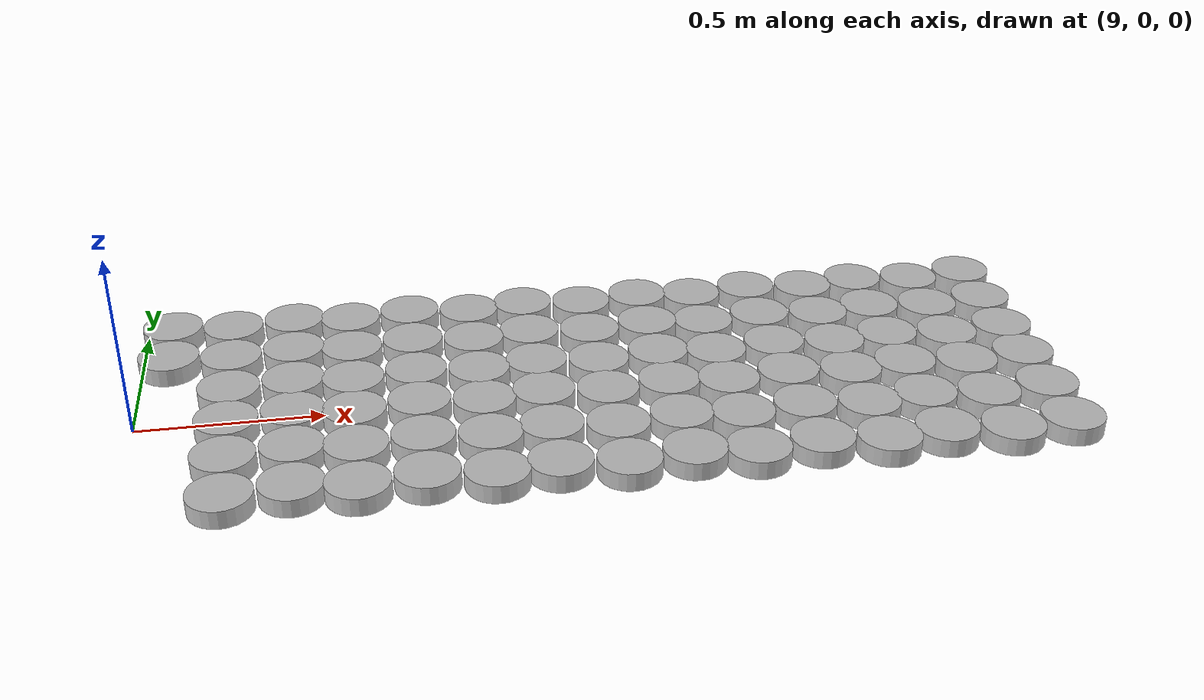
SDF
<sdf version="1.6">
 <world name="default">
  <model name="SnowPuck-45-4-0">
   <pose>9.08 0.26 0.05  0 0 0</pose>
   <link name="link">
    <inertial>
     <mass>0.01</mass>
     <inertia><ixx>0.145833</ixx><ixy>0</ixy><ixz>0</ixz><iyy>0.145833</iyy><iyz>0</iyz><izz>0.125</izz></inertia>
    </inertial>
    <collision name="collision">
     <geometry><cylinder><radius>.05</radius><length>0.04</length></cylinder></geometry>
    </collision>
    <visual name="visual">
     <geometry><cylinder><radius>.083333</radius><length>0.05</length></cylinder></geometry>
    </visual>
   </link>
  </model>
  <model name="SnowPuck-45-5-0">
   <pose>9.08 0.43 0.05  0 0 0</pose>
   <link name="link">
    <inertial>
     <mass>0.01</mass>
     <inertia><ixx>0.145833</ixx><ixy>0</ixy><ixz>0</ixz><iyy>0.145833</iyy><iyz>0</iyz><izz>0.125</izz></inertia>
    </inertial>
    <collision name="collision">
     <geometry><cylinder><radius>.05</radius><length>0.04</length></cylinder></geometry>
    </collision>
    <visual name="visual">
     <geometry><cylinder><radius>.083333</radius><length>0.05</length></cylinder></geometry>
    </visual>
   </link>
  </model>
  <model name="SnowPuck-46-0-0">
   <pose>9.25 -0.43 0.05  0 0 0</pose>
   <link name="link">
    <inertial>
     <mass>0.01</mass>
     <inertia><ixx>0.145833</ixx><ixy>0</ixy><ixz>0</ixz><iyy>0.145833</iyy><iyz>0</iyz><izz>0.125</izz></inertia>
    </inertial>
    <collision name="collision">
     <geometry><cylinder><radius>.05</radius><length>0.04</length></cylinder></geometry>
    </collision>
    <visual name="visual">
     <geometry><cylinder><radius>.083333</radius><length>0.05</length></cylinder></geometry>
    </visual>
   </link>
  </model>
  <model name="SnowPuck-46-1-0">
   <pose>9.25 -0.26 0.05  0 0 0</pose>
   <link name="link">
    <inertial>
     <mass>0.01</mass>
     <inertia><ixx>0.145833</ixx><ixy>0</ixy><ixz>0</ixz><iyy>0.145833</iyy><iyz>0</iyz><izz>0.125</izz></inertia>
    </inertial>
    <collision name="collision">
     <geometry><cylinder><radius>.05</radius><length>0.04</length></cylinder></geometry>
    </collision>
    <visual name="visual">
     <geometry><cylinder><radius>.083333</radius><length>0.05</length></cylinder></geometry>
    </visual>
   </link>
  </model>
  <model name="SnowPuck-46-2-0">
   <pose>9.25 -0.09 0.05  0 0 0</pose>
   <link name="link">
    <inertial>
     <mass>0.01</mass>
     <inertia><ixx>0.145833</ixx><ixy>0</ixy><ixz>0</ixz><iyy>0.145833</iyy><iyz>0</iyz><izz>0.125</izz></inertia>
    </inertial>
    <collision name="collision">
     <geometry><cylinder><radius>.05</radius><length>0.04</length></cylinder></geometry>
    </collision>
    <visual name="visual">
     <geometry><cylinder><radius>.083333</radius><length>0.05</length></cylinder></geometry>
    </visual>
   </link>
  </model>
  <model name="SnowPuck-46-3-0">
   <pose>9.25 0.07 0.05  0 0 0</pose>
   <link name="link">
    <inertial>
     <mass>0.01</mass>
     <inertia><ixx>0.145833</ixx><ixy>0</ixy><ixz>0</ixz><iyy>0.145833</iyy><iyz>0</iyz><izz>0.125</izz></inertia>
    </inertial>
    <collision name="collision">
     <geometry><cylinder><radius>.05</radius><length>0.04</length></cylinder></geometry>
    </collision>
    <visual name="visual">
     <geometry><cylinder><radius>.083333</radius><length>0.05</length></cylinder></geometry>
    </visual>
   </link>
  </model>
  <model name="SnowPuck-46-4-0">
   <pose>9.25 0.24 0.05  0 0 0</pose>
   <link name="link">
    <inertial>
     <mass>0.01</mass>
     <inertia><ixx>0.145833</ixx><ixy>0</ixy><ixz>0</ixz><iyy>0.145833</iyy><iyz>0</iyz><izz>0.125</izz></inertia>
    </inertial>
    <collision name="collision">
     <geometry><cylinder><radius>.05</radius><length>0.04</length></cylinder></geometry>
    </collision>
    <visual name="visual">
     <geometry><cylinder><radius>.083333</radius><length>0.05</length></cylinder></geometry>
    </visual>
   </link>
  </model>
  <model name="SnowPuck-46-5-0">
   <pose>9.25 0.41 0.05  0 0 0</pose>
   <link name="link">
    <inertial>
     <mass>0.01</mass>
     <inertia><ixx>0.145833</ixx><ixy>0</ixy><ixz>0</ixz><iyy>0.145833</iyy><iyz>0</iyz><izz>0.125</izz></inertia>
    </inertial>
    <collision name="collision">
     <geometry><cylinder><radius>.05</radius><length>0.04</length></cylinder></geometry>
    </collision>
    <visual name="visual">
     <geometry><cylinder><radius>.083333</radius><length>0.05</length></cylinder></geometry>
    </visual>
   </link>
  </model>
  <model name="SnowPuck-47-0-0">
   <pose>9.42 -0.41 0.05  0 0 0</pose>
   <link name="link">
    <inertial>
     <mass>0.01</mass>
     <inertia><ixx>0.145833</ixx><ixy>0</ixy><ixz>0</ixz><iyy>0.145833</iyy><iyz>0</iyz><izz>0.125</izz></inertia>
    </inertial>
    <collision name="collision">
     <geometry><cylinder><radius>.05</radius><length>0.04</length></cylinder></geometry>
    </collision>
    <visual name="visual">
     <geometry><cylinder><radius>.083333</radius><length>0.05</length></cylinder></geometry>
    </visual>
   </link>
  </model>
  <model name="SnowPuck-47-1-0">
   <pose>9.42 -0.24 0.05  0 0 0</pose>
   <link name="link">
    <inertial>
     <mass>0.01</mass>
     <inertia><ixx>0.145833</ixx><ixy>0</ixy><ixz>0</ixz><iyy>0.145833</iyy><iyz>0</iyz><izz>0.125</izz></inertia>
    </inertial>
    <collision name="collision">
     <geometry><cylinder><radius>.05</radius><length>0.04</length></cylinder></geometry>
    </collision>
    <visual name="visual">
     <geometry><cylinder><radius>.083333</radius><length>0.05</length></cylinder></geometry>
    </visual>
   </link>
  </model>
  <model name="SnowPuck-47-2-0">
   <pose>9.42 -0.07 0.05  0 0 0</pose>
   <link name="link">
    <inertial>
     <mass>0.01</mass>
     <inertia><ixx>0.145833</ixx><ixy>0</ixy><ixz>0</ixz><iyy>0.145833</iyy><iyz>0</iyz><izz>0.125</izz></inertia>
    </inertial>
    <collision name="collision">
     <geometry><cylinder><radius>.05</radius><length>0.04</length></cylinder></geometry>
    </collision>
    <visual name="visual">
     <geometry><cylinder><radius>.083333</radius><length>0.05</length></cylinder></geometry>
    </visual>
   </link>
  </model>
  <model name="SnowPuck-47-3-0">
   <pose>9.42 0.09 0.05  0 0 0</pose>
   <link name="link">
    <inertial>
     <mass>0.01</mass>
     <inertia><ixx>0.145833</ixx><ixy>0</ixy><ixz>0</ixz><iyy>0.145833</iyy><iyz>0</iyz><izz>0.125</izz></inertia>
    </inertial>
    <collision name="collision">
     <geometry><cylinder><radius>.05</radius><length>0.04</length></cylinder></geometry>
    </collision>
    <visual name="visual">
     <geometry><cylinder><radius>.083333</radius><length>0.05</length></cylinder></geometry>
    </visual>
   </link>
  </model>
  <model name="SnowPuck-47-4-0">
   <pose>9.42 0.26 0.05  0 0 0</pose>
   <link name="link">
    <inertial>
     <mass>0.01</mass>
     <inertia><ixx>0.145833</ixx><ixy>0</ixy><ixz>0</ixz><iyy>0.145833</iyy><iyz>0</iyz><izz>0.125</izz></inertia>
    </inertial>
    <collision name="collision">
     <geometry><cylinder><radius>.05</radius><length>0.04</length></cylinder></geometry>
    </collision>
    <visual name="visual">
     <geometry><cylinder><radius>.083333</radius><length>0.05</length></cylinder></geometry>
    </visual>
   </link>
  </model>
  <model name="SnowPuck-47-5-0">
   <pose>9.42 0.43 0.05  0 0 0</pose>
   <link name="link">
    <inertial>
     <mass>0.01</mass>
     <inertia><ixx>0.145833</ixx><ixy>0</ixy><ixz>0</ixz><iyy>0.145833</iyy><iyz>0</iyz><izz>0.125</izz></inertia>
    </inertial>
    <collision name="collision">
     <geometry><cylinder><radius>.05</radius><length>0.04</length></cylinder></geometry>
    </collision>
    <visual name="visual">
     <geometry><cylinder><radius>.083333</radius><length>0.05</length></cylinder></geometry>
    </visual>
   </link>
  </model>
  <model name="SnowPuck-48-0-0">
   <pose>9.58 -0.43 0.05  0 0 0</pose>
   <link name="link">
    <inertial>
     <mass>0.01</mass>
     <inertia><ixx>0.145833</ixx><ixy>0</ixy><ixz>0</ixz><iyy>0.145833</iyy><iyz>0</iyz><izz>0.125</izz></inertia>
    </inertial>
    <collision name="collision">
     <geometry><cylinder><radius>.05</radius><length>0.04</length></cylinder></geometry>
    </collision>
    <visual name="visual">
     <geometry><cylinder><radius>.083333</radius><length>0.05</length></cylinder></geometry>
    </visual>
   </link>
  </model>
  <model name="SnowPuck-48-1-0">
   <pose>9.58 -0.26 0.05  0 0 0</pose>
   <link name="link">
    <inertial>
     <mass>0.01</mass>
     <inertia><ixx>0.145833</ixx><ixy>0</ixy><ixz>0</ixz><iyy>0.145833</iyy><iyz>0</iyz><izz>0.125</izz></inertia>
    </inertial>
    <collision name="collision">
     <geometry><cylinder><radius>.05</radius><length>0.04</length></cylinder></geometry>
    </collision>
    <visual name="visual">
     <geometry><cylinder><radius>.083333</radius><length>0.05</length></cylinder></geometry>
    </visual>
   </link>
  </model>
  <model name="SnowPuck-48-2-0">
   <pose>9.58 -0.09 0.05  0 0 0</pose>
   <link name="link">
    <inertial>
     <mass>0.01</mass>
     <inertia><ixx>0.145833</ixx><ixy>0</ixy><ixz>0</ixz><iyy>0.145833</iyy><iyz>0</iyz><izz>0.125</izz></inertia>
    </inertial>
    <collision name="collision">
     <geometry><cylinder><radius>.05</radius><length>0.04</length></cylinder></geometry>
    </collision>
    <visual name="visual">
     <geometry><cylinder><radius>.083333</radius><length>0.05</length></cylinder></geometry>
    </visual>
   </link>
  </model>
  <model name="SnowPuck-48-3-0">
   <pose>9.58 0.07 0.05  0 0 0</pose>
   <link name="link">
    <inertial>
     <mass>0.01</mass>
     <inertia><ixx>0.145833</ixx><ixy>0</ixy><ixz>0</ixz><iyy>0.145833</iyy><iyz>0</iyz><izz>0.125</izz></inertia>
    </inertial>
    <collision name="collision">
     <geometry><cylinder><radius>.05</radius><length>0.04</length></cylinder></geometry>
    </collision>
    <visual name="visual">
     <geometry><cylinder><radius>.083333</radius><length>0.05</length></cylinder></geometry>
    </visual>
   </link>
  </model>
  <model name="SnowPuck-48-4-0">
   <pose>9.58 0.24 0.05  0 0 0</pose>
   <link name="link">
    <inertial>
     <mass>0.01</mass>
     <inertia><ixx>0.145833</ixx><ixy>0</ixy><ixz>0</ixz><iyy>0.145833</iyy><iyz>0</iyz><izz>0.125</izz></inertia>
    </inertial>
    <collision name="collision">
     <geometry><cylinder><radius>.05</radius><length>0.04</length></cylinder></geometry>
    </collision>
    <visual name="visual">
     <geometry><cylinder><radius>.083333</radius><length>0.05</length></cylinder></geometry>
    </visual>
   </link>
  </model>
  <model name="SnowPuck-48-5-0">
   <pose>9.58 0.41 0.05  0 0 0</pose>
   <link name="link">
    <inertial>
     <mass>0.01</mass>
     <inertia><ixx>0.145833</ixx><ixy>0</ixy><ixz>0</ixz><iyy>0.145833</iyy><iyz>0</iyz><izz>0.125</izz></inertia>
    </inertial>
    <collision name="collision">
     <geometry><cylinder><radius>.05</radius><length>0.04</length></cylinder></geometry>
    </collision>
    <visual name="visual">
     <geometry><cylinder><radius>.083333</radius><length>0.05</length></cylinder></geometry>
    </visual>
   </link>
  </model>
  <model name="SnowPuck-49-0-0">
   <pose>9.75 -0.41 0.05  0 0 0</pose>
   <link name="link">
    <inertial>
     <mass>0.01</mass>
     <inertia><ixx>0.145833</ixx><ixy>0</ixy><ixz>0</ixz><iyy>0.145833</iyy><iyz>0</iyz><izz>0.125</izz></inertia>
    </inertial>
    <collision name="collision">
     <geometry><cylinder><radius>.05</radius><length>0.04</length></cylinder></geometry>
    </collision>
    <visual name="visual">
     <geometry><cylinder><radius>.083333</radius><length>0.05</length></cylinder></geometry>
    </visual>
   </link>
  </model>
  <model name="SnowPuck-49-1-0">
   <pose>9.75 -0.24 0.05  0 0 0</pose>
   <link name="link">
    <inertial>
     <mass>0.01</mass>
     <inertia><ixx>0.145833</ixx><ixy>0</ixy><ixz>0</ixz><iyy>0.145833</iyy><iyz>0</iyz><izz>0.125</izz></inertia>
    </inertial>
    <collision name="collision">
     <geometry><cylinder><radius>.05</radius><length>0.04</length></cylinder></geometry>
    </collision>
    <visual name="visual">
     <geometry><cylinder><radius>.083333</radius><length>0.05</length></cylinder></geometry>
    </visual>
   </link>
  </model>
  <model name="SnowPuck-49-2-0">
   <pose>9.75 -0.07 0.05  0 0 0</pose>
   <link name="link">
    <inertial>
     <mass>0.01</mass>
     <inertia><ixx>0.145833</ixx><ixy>0</ixy><ixz>0</ixz><iyy>0.145833</iyy><iyz>0</iyz><izz>0.125</izz></inertia>
    </inertial>
    <collision name="collision">
     <geometry><cylinder><radius>.05</radius><length>0.04</length></cylinder></geometry>
    </collision>
    <visual name="visual">
     <geometry><cylinder><radius>.083333</radius><length>0.05</length></cylinder></geometry>
    </visual>
   </link>
  </model>
  <model name="SnowPuck-49-3-0">
   <pose>9.75 0.09 0.05  0 0 0</pose>
   <link name="link">
    <inertial>
     <mass>0.01</mass>
     <inertia><ixx>0.145833</ixx><ixy>0</ixy><ixz>0</ixz><iyy>0.145833</iyy><iyz>0</iyz><izz>0.125</izz></inertia>
    </inertial>
    <collision name="collision">
     <geometry><cylinder><radius>.05</radius><length>0.04</length></cylinder></geometry>
    </collision>
    <visual name="visual">
     <geometry><cylinder><radius>.083333</radius><length>0.05</length></cylinder></geometry>
    </visual>
   </link>
  </model>
  <model name="SnowPuck-49-4-0">
   <pose>9.75 0.26 0.05  0 0 0</pose>
   <link name="link">
    <inertial>
     <mass>0.01</mass>
     <inertia><ixx>0.145833</ixx><ixy>0</ixy><ixz>0</ixz><iyy>0.145833</iyy><iyz>0</iyz><izz>0.125</izz></inertia>
    </inertial>
    <collision name="collision">
     <geometry><cylinder><radius>.05</radius><length>0.04</length></cylinder></geometry>
    </collision>
    <visual name="visual">
     <geometry><cylinder><radius>.083333</radius><length>0.05</length></cylinder></geometry>
    </visual>
   </link>
  </model>
  <model name="SnowPuck-49-5-0">
   <pose>9.75 0.43 0.05  0 0 0</pose>
   <link name="link">
    <inertial>
     <mass>0.01</mass>
     <inertia><ixx>0.145833</ixx><ixy>0</ixy><ixz>0</ixz><iyy>0.145833</iyy><iyz>0</iyz><izz>0.125</izz></inertia>
    </inertial>
    <collision name="collision">
     <geometry><cylinder><radius>.05</radius><length>0.04</length></cylinder></geometry>
    </collision>
    <visual name="visual">
     <geometry><cylinder><radius>.083333</radius><length>0.05</length></cylinder></geometry>
    </visual>
   </link>
  </model>
  <model name="SnowPuck-50-0-0">
   <pose>9.92 -0.43 0.05  0 0 0</pose>
   <link name="link">
    <inertial>
     <mass>0.01</mass>
     <inertia><ixx>0.145833</ixx><ixy>0</ixy><ixz>0</ixz><iyy>0.145833</iyy><iyz>0</iyz><izz>0.125</izz></inertia>
    </inertial>
    <collision name="collision">
     <geometry><cylinder><radius>.05</radius><length>0.04</length></cylinder></geometry>
    </collision>
    <visual name="visual">
     <geometry><cylinder><radius>.083333</radius><length>0.05</length></cylinder></geometry>
    </visual>
   </link>
  </model>
  <model name="SnowPuck-50-1-0">
   <pose>9.92 -0.26 0.05  0 0 0</pose>
   <link name="link">
    <inertial>
     <mass>0.01</mass>
     <inertia><ixx>0.145833</ixx><ixy>0</ixy><ixz>0</ixz><iyy>0.145833</iyy><iyz>0</iyz><izz>0.125</izz></inertia>
    </inertial>
    <collision name="collision">
     <geometry><cylinder><radius>.05</radius><length>0.04</length></cylinder></geometry>
    </collision>
    <visual name="visual">
     <geometry><cylinder><radius>.083333</radius><length>0.05</length></cylinder></geometry>
    </visual>
   </link>
  </model>
  <model name="SnowPuck-50-2-0">
   <pose>9.92 -0.09 0.05  0 0 0</pose>
   <link name="link">
    <inertial>
     <mass>0.01</mass>
     <inertia><ixx>0.145833</ixx><ixy>0</ixy><ixz>0</ixz><iyy>0.145833</iyy><iyz>0</iyz><izz>0.125</izz></inertia>
    </inertial>
    <collision name="collision">
     <geometry><cylinder><radius>.05</radius><length>0.04</length></cylinder></geometry>
    </collision>
    <visual name="visual">
     <geometry><cylinder><radius>.083333</radius><length>0.05</length></cylinder></geometry>
    </visual>
   </link>
  </model>
  <model name="SnowPuck-50-3-0">
   <pose>9.92 0.07 0.05  0 0 0</pose>
   <link name="link">
    <inertial>
     <mass>0.01</mass>
     <inertia><ixx>0.145833</ixx><ixy>0</ixy><ixz>0</ixz><iyy>0.145833</iyy><iyz>0</iyz><izz>0.125</izz></inertia>
    </inertial>
    <collision name="collision">
     <geometry><cylinder><radius>.05</radius><length>0.04</length></cylinder></geometry>
    </collision>
    <visual name="visual">
     <geometry><cylinder><radius>.083333</radius><length>0.05</length></cylinder></geometry>
    </visual>
   </link>
  </model>
  <model name="SnowPuck-50-4-0">
   <pose>9.92 0.24 0.05  0 0 0</pose>
   <link name="link">
    <inertial>
     <mass>0.01</mass>
     <inertia><ixx>0.145833</ixx><ixy>0</ixy><ixz>0</ixz><iyy>0.145833</iyy><iyz>0</iyz><izz>0.125</izz></inertia>
    </inertial>
    <collision name="collision">
     <geometry><cylinder><radius>.05</radius><length>0.04</length></cylinder></geometry>
    </collision>
    <visual name="visual">
     <geometry><cylinder><radius>.083333</radius><length>0.05</length></cylinder></geometry>
    </visual>
   </link>
  </model>
  <model name="SnowPuck-50-5-0">
   <pose>9.92 0.41 0.05  0 0 0</pose>
   <link name="link">
    <inertial>
     <mass>0.01</mass>
     <inertia><ixx>0.145833</ixx><ixy>0</ixy><ixz>0</ixz><iyy>0.145833</iyy><iyz>0</iyz><izz>0.125</izz></inertia>
    </inertial>
    <collision name="collision">
     <geometry><cylinder><radius>.05</radius><length>0.04</length></cylinder></geometry>
    </collision>
    <visual name="visual">
     <geometry><cylinder><radius>.083333</radius><length>0.05</length></cylinder></geometry>
    </visual>
   </link>
  </model>
  <model name="SnowPuck-51-0-0">
   <pose>10.08 -0.41 0.05  0 0 0</pose>
   <link name="link">
    <inertial>
     <mass>0.01</mass>
     <inertia><ixx>0.145833</ixx><ixy>0</ixy><ixz>0</ixz><iyy>0.145833</iyy><iyz>0</iyz><izz>0.125</izz></inertia>
    </inertial>
    <collision name="collision">
     <geometry><cylinder><radius>.05</radius><length>0.04</length></cylinder></geometry>
    </collision>
    <visual name="visual">
     <geometry><cylinder><radius>.083333</radius><length>0.05</length></cylinder></geometry>
    </visual>
   </link>
  </model>
  <model name="SnowPuck-51-1-0">
   <pose>10.08 -0.24 0.05  0 0 0</pose>
   <link name="link">
    <inertial>
     <mass>0.01</mass>
     <inertia><ixx>0.145833</ixx><ixy>0</ixy><ixz>0</ixz><iyy>0.145833</iyy><iyz>0</iyz><izz>0.125</izz></inertia>
    </inertial>
    <collision name="collision">
     <geometry><cylinder><radius>.05</radius><length>0.04</length></cylinder></geometry>
    </collision>
    <visual name="visual">
     <geometry><cylinder><radius>.083333</radius><length>0.05</length></cylinder></geometry>
    </visual>
   </link>
  </model>
  <model name="SnowPuck-51-2-0">
   <pose>10.08 -0.07 0.05  0 0 0</pose>
   <link name="link">
    <inertial>
     <mass>0.01</mass>
     <inertia><ixx>0.145833</ixx><ixy>0</ixy><ixz>0</ixz><iyy>0.145833</iyy><iyz>0</iyz><izz>0.125</izz></inertia>
    </inertial>
    <collision name="collision">
     <geometry><cylinder><radius>.05</radius><length>0.04</length></cylinder></geometry>
    </collision>
    <visual name="visual">
     <geometry><cylinder><radius>.083333</radius><length>0.05</length></cylinder></geometry>
    </visual>
   </link>
  </model>
  <model name="SnowPuck-51-3-0">
   <pose>10.08 0.09 0.05  0 0 0</pose>
   <link name="link">
    <inertial>
     <mass>0.01</mass>
     <inertia><ixx>0.145833</ixx><ixy>0</ixy><ixz>0</ixz><iyy>0.145833</iyy><iyz>0</iyz><izz>0.125</izz></inertia>
    </inertial>
    <collision name="collision">
     <geometry><cylinder><radius>.05</radius><length>0.04</length></cylinder></geometry>
    </collision>
    <visual name="visual">
     <geometry><cylinder><radius>.083333</radius><length>0.05</length></cylinder></geometry>
    </visual>
   </link>
  </model>
  <model name="SnowPuck-51-4-0">
   <pose>10.08 0.26 0.05  0 0 0</pose>
   <link name="link">
    <inertial>
     <mass>0.01</mass>
     <inertia><ixx>0.145833</ixx><ixy>0</ixy><ixz>0</ixz><iyy>0.145833</iyy><iyz>0</iyz><izz>0.125</izz></inertia>
    </inertial>
    <collision name="collision">
     <geometry><cylinder><radius>.05</radius><length>0.04</length></cylinder></geometry>
    </collision>
    <visual name="visual">
     <geometry><cylinder><radius>.083333</radius><length>0.05</length></cylinder></geometry>
    </visual>
   </link>
  </model>
  <model name="SnowPuck-51-5-0">
   <pose>10.08 0.43 0.05  0 0 0</pose>
   <link name="link">
    <inertial>
     <mass>0.01</mass>
     <inertia><ixx>0.145833</ixx><ixy>0</ixy><ixz>0</ixz><iyy>0.145833</iyy><iyz>0</iyz><izz>0.125</izz></inertia>
    </inertial>
    <collision name="collision">
     <geometry><cylinder><radius>.05</radius><length>0.04</length></cylinder></geometry>
    </collision>
    <visual name="visual">
     <geometry><cylinder><radius>.083333</radius><length>0.05</length></cylinder></geometry>
    </visual>
   </link>
  </model>
  <model name="SnowPuck-52-0-0">
   <pose>10.25 -0.43 0.05  0 0 0</pose>
   <link name="link">
    <inertial>
     <mass>0.01</mass>
     <inertia><ixx>0.145833</ixx><ixy>0</ixy><ixz>0</ixz><iyy>0.145833</iyy><iyz>0</iyz><izz>0.125</izz></inertia>
    </inertial>
    <collision name="collision">
     <geometry><cylinder><radius>.05</radius><length>0.04</length></cylinder></geometry>
    </collision>
    <visual name="visual">
     <geometry><cylinder><radius>.083333</radius><length>0.05</length></cylinder></geometry>
    </visual>
   </link>
  </model>
  <model name="SnowPuck-52-1-0">
   <pose>10.25 -0.26 0.05  0 0 0</pose>
   <link name="link">
    <inertial>
     <mass>0.01</mass>
     <inertia><ixx>0.145833</ixx><ixy>0</ixy><ixz>0</ixz><iyy>0.145833</iyy><iyz>0</iyz><izz>0.125</izz></inertia>
    </inertial>
    <collision name="collision">
     <geometry><cylinder><radius>.05</radius><length>0.04</length></cylinder></geometry>
    </collision>
    <visual name="visual">
     <geometry><cylinder><radius>.083333</radius><length>0.05</length></cylinder></geometry>
    </visual>
   </link>
  </model>
  <model name="SnowPuck-52-2-0">
   <pose>10.25 -0.09 0.05  0 0 0</pose>
   <link name="link">
    <inertial>
     <mass>0.01</mass>
     <inertia><ixx>0.145833</ixx><ixy>0</ixy><ixz>0</ixz><iyy>0.145833</iyy><iyz>0</iyz><izz>0.125</izz></inertia>
    </inertial>
    <collision name="collision">
     <geometry><cylinder><radius>.05</radius><length>0.04</length></cylinder></geometry>
    </collision>
    <visual name="visual">
     <geometry><cylinder><radius>.083333</radius><length>0.05</length></cylinder></geometry>
    </visual>
   </link>
  </model>
  <model name="SnowPuck-52-3-0">
   <pose>10.25 0.07 0.05  0 0 0</pose>
   <link name="link">
    <inertial>
     <mass>0.01</mass>
     <inertia><ixx>0.145833</ixx><ixy>0</ixy><ixz>0</ixz><iyy>0.145833</iyy><iyz>0</iyz><izz>0.125</izz></inertia>
    </inertial>
    <collision name="collision">
     <geometry><cylinder><radius>.05</radius><length>0.04</length></cylinder></geometry>
    </collision>
    <visual name="visual">
     <geometry><cylinder><radius>.083333</radius><length>0.05</length></cylinder></geometry>
    </visual>
   </link>
  </model>
  <model name="SnowPuck-52-4-0">
   <pose>10.25 0.24 0.05  0 0 0</pose>
   <link name="link">
    <inertial>
     <mass>0.01</mass>
     <inertia><ixx>0.145833</ixx><ixy>0</ixy><ixz>0</ixz><iyy>0.145833</iyy><iyz>0</iyz><izz>0.125</izz></inertia>
    </inertial>
    <collision name="collision">
     <geometry><cylinder><radius>.05</radius><length>0.04</length></cylinder></geometry>
    </collision>
    <visual name="visual">
     <geometry><cylinder><radius>.083333</radius><length>0.05</length></cylinder></geometry>
    </visual>
   </link>
  </model>
  <model name="SnowPuck-52-5-0">
   <pose>10.25 0.41 0.05  0 0 0</pose>
   <link name="link">
    <inertial>
     <mass>0.01</mass>
     <inertia><ixx>0.145833</ixx><ixy>0</ixy><ixz>0</ixz><iyy>0.145833</iyy><iyz>0</iyz><izz>0.125</izz></inertia>
    </inertial>
    <collision name="collision">
     <geometry><cylinder><radius>.05</radius><length>0.04</length></cylinder></geometry>
    </collision>
    <visual name="visual">
     <geometry><cylinder><radius>.083333</radius><length>0.05</length></cylinder></geometry>
    </visual>
   </link>
  </model>
  <model name="SnowPuck-53-0-0">
   <pose>10.42 -0.41 0.05  0 0 0</pose>
   <link name="link">
    <inertial>
     <mass>0.01</mass>
     <inertia><ixx>0.145833</ixx><ixy>0</ixy><ixz>0</ixz><iyy>0.145833</iyy><iyz>0</iyz><izz>0.125</izz></inertia>
    </inertial>
    <collision name="collision">
     <geometry><cylinder><radius>.05</radius><length>0.04</length></cylinder></geometry>
    </collision>
    <visual name="visual">
     <geometry><cylinder><radius>.083333</radius><length>0.05</length></cylinder></geometry>
    </visual>
   </link>
  </model>
  <model name="SnowPuck-53-1-0">
   <pose>10.42 -0.24 0.05  0 0 0</pose>
   <link name="link">
    <inertial>
     <mass>0.01</mass>
     <inertia><ixx>0.145833</ixx><ixy>0</ixy><ixz>0</ixz><iyy>0.145833</iyy><iyz>0</iyz><izz>0.125</izz></inertia>
    </inertial>
    <collision name="collision">
     <geometry><cylinder><radius>.05</radius><length>0.04</length></cylinder></geometry>
    </collision>
    <visual name="visual">
     <geometry><cylinder><radius>.083333</radius><length>0.05</length></cylinder></geometry>
    </visual>
   </link>
  </model>
  <model name="SnowPuck-53-2-0">
   <pose>10.42 -0.07 0.05  0 0 0</pose>
   <link name="link">
    <inertial>
     <mass>0.01</mass>
     <inertia><ixx>0.145833</ixx><ixy>0</ixy><ixz>0</ixz><iyy>0.145833</iyy><iyz>0</iyz><izz>0.125</izz></inertia>
    </inertial>
    <collision name="collision">
     <geometry><cylinder><radius>.05</radius><length>0.04</length></cylinder></geometry>
    </collision>
    <visual name="visual">
     <geometry><cylinder><radius>.083333</radius><length>0.05</length></cylinder></geometry>
    </visual>
   </link>
  </model>
  <model name="SnowPuck-53-3-0">
   <pose>10.42 0.09 0.05  0 0 0</pose>
   <link name="link">
    <inertial>
     <mass>0.01</mass>
     <inertia><ixx>0.145833</ixx><ixy>0</ixy><ixz>0</ixz><iyy>0.145833</iyy><iyz>0</iyz><izz>0.125</izz></inertia>
    </inertial>
    <collision name="collision">
     <geometry><cylinder><radius>.05</radius><length>0.04</length></cylinder></geometry>
    </collision>
    <visual name="visual">
     <geometry><cylinder><radius>.083333</radius><length>0.05</length></cylinder></geometry>
    </visual>
   </link>
  </model>
  <model name="SnowPuck-53-4-0">
   <pose>10.42 0.26 0.05  0 0 0</pose>
   <link name="link">
    <inertial>
     <mass>0.01</mass>
     <inertia><ixx>0.145833</ixx><ixy>0</ixy><ixz>0</ixz><iyy>0.145833</iyy><iyz>0</iyz><izz>0.125</izz></inertia>
    </inertial>
    <collision name="collision">
     <geometry><cylinder><radius>.05</radius><length>0.04</length></cylinder></geometry>
    </collision>
    <visual name="visual">
     <geometry><cylinder><radius>.083333</radius><length>0.05</length></cylinder></geometry>
    </visual>
   </link>
  </model>
  <model name="SnowPuck-53-5-0">
   <pose>10.42 0.43 0.05  0 0 0</pose>
   <link name="link">
    <inertial>
     <mass>0.01</mass>
     <inertia><ixx>0.145833</ixx><ixy>0</ixy><ixz>0</ixz><iyy>0.145833</iyy><iyz>0</iyz><izz>0.125</izz></inertia>
    </inertial>
    <collision name="collision">
     <geometry><cylinder><radius>.05</radius><length>0.04</length></cylinder></geometry>
    </collision>
    <visual name="visual">
     <geometry><cylinder><radius>.083333</radius><length>0.05</length></cylinder></geometry>
    </visual>
   </link>
  </model>
  <model name="SnowPuck-54-0-0">
   <pose>10.58 -0.43 0.05  0 0 0</pose>
   <link name="link">
    <inertial>
     <mass>0.01</mass>
     <inertia><ixx>0.145833</ixx><ixy>0</ixy><ixz>0</ixz><iyy>0.145833</iyy><iyz>0</iyz><izz>0.125</izz></inertia>
    </inertial>
    <collision name="collision">
     <geometry><cylinder><radius>.05</radius><length>0.04</length></cylinder></geometry>
    </collision>
    <visual name="visual">
     <geometry><cylinder><radius>.083333</radius><length>0.05</length></cylinder></geometry>
    </visual>
   </link>
  </model>
  <model name="SnowPuck-54-1-0">
   <pose>10.58 -0.26 0.05  0 0 0</pose>
   <link name="link">
    <inertial>
     <mass>0.01</mass>
     <inertia><ixx>0.145833</ixx><ixy>0</ixy><ixz>0</ixz><iyy>0.145833</iyy><iyz>0</iyz><izz>0.125</izz></inertia>
    </inertial>
    <collision name="collision">
     <geometry><cylinder><radius>.05</radius><length>0.04</length></cylinder></geometry>
    </collision>
    <visual name="visual">
     <geometry><cylinder><radius>.083333</radius><length>0.05</length></cylinder></geometry>
    </visual>
   </link>
  </model>
  <model name="SnowPuck-54-2-0">
   <pose>10.58 -0.09 0.05  0 0 0</pose>
   <link name="link">
    <inertial>
     <mass>0.01</mass>
     <inertia><ixx>0.145833</ixx><ixy>0</ixy><ixz>0</ixz><iyy>0.145833</iyy><iyz>0</iyz><izz>0.125</izz></inertia>
    </inertial>
    <collision name="collision">
     <geometry><cylinder><radius>.05</radius><length>0.04</length></cylinder></geometry>
    </collision>
    <visual name="visual">
     <geometry><cylinder><radius>.083333</radius><length>0.05</length></cylinder></geometry>
    </visual>
   </link>
  </model>
  <model name="SnowPuck-54-3-0">
   <pose>10.58 0.07 0.05  0 0 0</pose>
   <link name="link">
    <inertial>
     <mass>0.01</mass>
     <inertia><ixx>0.145833</ixx><ixy>0</ixy><ixz>0</ixz><iyy>0.145833</iyy><iyz>0</iyz><izz>0.125</izz></inertia>
    </inertial>
    <collision name="collision">
     <geometry><cylinder><radius>.05</radius><length>0.04</length></cylinder></geometry>
    </collision>
    <visual name="visual">
     <geometry><cylinder><radius>.083333</radius><length>0.05</length></cylinder></geometry>
    </visual>
   </link>
  </model>
  <model name="SnowPuck-54-4-0">
   <pose>10.58 0.24 0.05  0 0 0</pose>
   <link name="link">
    <inertial>
     <mass>0.01</mass>
     <inertia><ixx>0.145833</ixx><ixy>0</ixy><ixz>0</ixz><iyy>0.145833</iyy><iyz>0</iyz><izz>0.125</izz></inertia>
    </inertial>
    <collision name="collision">
     <geometry><cylinder><radius>.05</radius><length>0.04</length></cylinder></geometry>
    </collision>
    <visual name="visual">
     <geometry><cylinder><radius>.083333</radius><length>0.05</length></cylinder></geometry>
    </visual>
   </link>
  </model>
  <model name="SnowPuck-54-5-0">
   <pose>10.58 0.41 0.05  0 0 0</pose>
   <link name="link">
    <inertial>
     <mass>0.01</mass>
     <inertia><ixx>0.145833</ixx><ixy>0</ixy><ixz>0</ixz><iyy>0.145833</iyy><iyz>0</iyz><izz>0.125</izz></inertia>
    </inertial>
    <collision name="collision">
     <geometry><cylinder><radius>.05</radius><length>0.04</length></cylinder></geometry>
    </collision>
    <visual name="visual">
     <geometry><cylinder><radius>.083333</radius><length>0.05</length></cylinder></geometry>
    </visual>
   </link>
  </model>
  <model name="SnowPuck-55-0-0">
   <pose>10.75 -0.41 0.05  0 0 0</pose>
   <link name="link">
    <inertial>
     <mass>0.01</mass>
     <inertia><ixx>0.145833</ixx><ixy>0</ixy><ixz>0</ixz><iyy>0.145833</iyy><iyz>0</iyz><izz>0.125</izz></inertia>
    </inertial>
    <collision name="collision">
     <geometry><cylinder><radius>.05</radius><length>0.04</length></cylinder></geometry>
    </collision>
    <visual name="visual">
     <geometry><cylinder><radius>.083333</radius><length>0.05</length></cylinder></geometry>
    </visual>
   </link>
  </model>
  <model name="SnowPuck-55-1-0">
   <pose>10.75 -0.24 0.05  0 0 0</pose>
   <link name="link">
    <inertial>
     <mass>0.01</mass>
     <inertia><ixx>0.145833</ixx><ixy>0</ixy><ixz>0</ixz><iyy>0.145833</iyy><iyz>0</iyz><izz>0.125</izz></inertia>
    </inertial>
    <collision name="collision">
     <geometry><cylinder><radius>.05</radius><length>0.04</length></cylinder></geometry>
    </collision>
    <visual name="visual">
     <geometry><cylinder><radius>.083333</radius><length>0.05</length></cylinder></geometry>
    </visual>
   </link>
  </model>
  <model name="SnowPuck-55-2-0">
   <pose>10.75 -0.07 0.05  0 0 0</pose>
   <link name="link">
    <inertial>
     <mass>0.01</mass>
     <inertia><ixx>0.145833</ixx><ixy>0</ixy><ixz>0</ixz><iyy>0.145833</iyy><iyz>0</iyz><izz>0.125</izz></inertia>
    </inertial>
    <collision name="collision">
     <geometry><cylinder><radius>.05</radius><length>0.04</length></cylinder></geometry>
    </collision>
    <visual name="visual">
     <geometry><cylinder><radius>.083333</radius><length>0.05</length></cylinder></geometry>
    </visual>
   </link>
  </model>
  <model name="SnowPuck-55-3-0">
   <pose>10.75 0.09 0.05  0 0 0</pose>
   <link name="link">
    <inertial>
     <mass>0.01</mass>
     <inertia><ixx>0.145833</ixx><ixy>0</ixy><ixz>0</ixz><iyy>0.145833</iyy><iyz>0</iyz><izz>0.125</izz></inertia>
    </inertial>
    <collision name="collision">
     <geometry><cylinder><radius>.05</radius><length>0.04</length></cylinder></geometry>
    </collision>
    <visual name="visual">
     <geometry><cylinder><radius>.083333</radius><length>0.05</length></cylinder></geometry>
    </visual>
   </link>
  </model>
  <model name="SnowPuck-55-4-0">
   <pose>10.75 0.26 0.05  0 0 0</pose>
   <link name="link">
    <inertial>
     <mass>0.01</mass>
     <inertia><ixx>0.145833</ixx><ixy>0</ixy><ixz>0</ixz><iyy>0.145833</iyy><iyz>0</iyz><izz>0.125</izz></inertia>
    </inertial>
    <collision name="collision">
     <geometry><cylinder><radius>.05</radius><length>0.04</length></cylinder></geometry>
    </collision>
    <visual name="visual">
     <geometry><cylinder><radius>.083333</radius><length>0.05</length></cylinder></geometry>
    </visual>
   </link>
  </model>
  <model name="SnowPuck-55-5-0">
   <pose>10.75 0.43 0.05  0 0 0</pose>
   <link name="link">
    <inertial>
     <mass>0.01</mass>
     <inertia><ixx>0.145833</ixx><ixy>0</ixy><ixz>0</ixz><iyy>0.145833</iyy><iyz>0</iyz><izz>0.125</izz></inertia>
    </inertial>
    <collision name="collision">
     <geometry><cylinder><radius>.05</radius><length>0.04</length></cylinder></geometry>
    </collision>
    <visual name="visual">
     <geometry><cylinder><radius>.083333</radius><length>0.05</length></cylinder></geometry>
    </visual>
   </link>
  </model>
  <model name="SnowPuck-56-0-0">
   <pose>10.92 -0.43 0.05  0 0 0</pose>
   <link name="link">
    <inertial>
     <mass>0.01</mass>
     <inertia><ixx>0.145833</ixx><ixy>0</ixy><ixz>0</ixz><iyy>0.145833</iyy><iyz>0</iyz><izz>0.125</izz></inertia>
    </inertial>
    <collision name="collision">
     <geometry><cylinder><radius>.05</radius><length>0.04</length></cylinder></geometry>
    </collision>
    <visual name="visual">
     <geometry><cylinder><radius>.083333</radius><length>0.05</length></cylinder></geometry>
    </visual>
   </link>
  </model>
  <model name="SnowPuck-56-1-0">
   <pose>10.92 -0.26 0.05  0 0 0</pose>
   <link name="link">
    <inertial>
     <mass>0.01</mass>
     <inertia><ixx>0.145833</ixx><ixy>0</ixy><ixz>0</ixz><iyy>0.145833</iyy><iyz>0</iyz><izz>0.125</izz></inertia>
    </inertial>
    <collision name="collision">
     <geometry><cylinder><radius>.05</radius><length>0.04</length></cylinder></geometry>
    </collision>
    <visual name="visual">
     <geometry><cylinder><radius>.083333</radius><length>0.05</length></cylinder></geometry>
    </visual>
   </link>
  </model>
  <model name="SnowPuck-56-2-0">
   <pose>10.92 -0.09 0.05  0 0 0</pose>
   <link name="link">
    <inertial>
     <mass>0.01</mass>
     <inertia><ixx>0.145833</ixx><ixy>0</ixy><ixz>0</ixz><iyy>0.145833</iyy><iyz>0</iyz><izz>0.125</izz></inertia>
    </inertial>
    <collision name="collision">
     <geometry><cylinder><radius>.05</radius><length>0.04</length></cylinder></geometry>
    </collision>
    <visual name="visual">
     <geometry><cylinder><radius>.083333</radius><length>0.05</length></cylinder></geometry>
    </visual>
   </link>
  </model>
  <model name="SnowPuck-56-3-0">
   <pose>10.92 0.07 0.05  0 0 0</pose>
   <link name="link">
    <inertial>
     <mass>0.01</mass>
     <inertia><ixx>0.145833</ixx><ixy>0</ixy><ixz>0</ixz><iyy>0.145833</iyy><iyz>0</iyz><izz>0.125</izz></inertia>
    </inertial>
    <collision name="collision">
     <geometry><cylinder><radius>.05</radius><length>0.04</length></cylinder></geometry>
    </collision>
    <visual name="visual">
     <geometry><cylinder><radius>.083333</radius><length>0.05</length></cylinder></geometry>
    </visual>
   </link>
  </model>
  <model name="SnowPuck-56-4-0">
   <pose>10.92 0.24 0.05  0 0 0</pose>
   <link name="link">
    <inertial>
     <mass>0.01</mass>
     <inertia><ixx>0.145833</ixx><ixy>0</ixy><ixz>0</ixz><iyy>0.145833</iyy><iyz>0</iyz><izz>0.125</izz></inertia>
    </inertial>
    <collision name="collision">
     <geometry><cylinder><radius>.05</radius><length>0.04</length></cylinder></geometry>
    </collision>
    <visual name="visual">
     <geometry><cylinder><radius>.083333</radius><length>0.05</length></cylinder></geometry>
    </visual>
   </link>
  </model>
  <model name="SnowPuck-56-5-0">
   <pose>10.92 0.41 0.05  0 0 0</pose>
   <link name="link">
    <inertial>
     <mass>0.01</mass>
     <inertia><ixx>0.145833</ixx><ixy>0</ixy><ixz>0</ixz><iyy>0.145833</iyy><iyz>0</iyz><izz>0.125</izz></inertia>
    </inertial>
    <collision name="collision">
     <geometry><cylinder><radius>.05</radius><length>0.04</length></cylinder></geometry>
    </collision>
    <visual name="visual">
     <geometry><cylinder><radius>.083333</radius><length>0.05</length></cylinder></geometry>
    </visual>
   </link>
  </model>
  <model name="SnowPuck-57-0-0">
   <pose>11.08 -0.41 0.05  0 0 0</pose>
   <link name="link">
    <inertial>
     <mass>0.01</mass>
     <inertia><ixx>0.145833</ixx><ixy>0</ixy><ixz>0</ixz><iyy>0.145833</iyy><iyz>0</iyz><izz>0.125</izz></inertia>
    </inertial>
    <collision name="collision">
     <geometry><cylinder><radius>.05</radius><length>0.04</length></cylinder></geometry>
    </collision>
    <visual name="visual">
     <geometry><cylinder><radius>.083333</radius><length>0.05</length></cylinder></geometry>
    </visual>
   </link>
  </model>
  <model name="SnowPuck-57-1-0">
   <pose>11.08 -0.24 0.05  0 0 0</pose>
   <link name="link">
    <inertial>
     <mass>0.01</mass>
     <inertia><ixx>0.145833</ixx><ixy>0</ixy><ixz>0</ixz><iyy>0.145833</iyy><iyz>0</iyz><izz>0.125</izz></inertia>
    </inertial>
    <collision name="collision">
     <geometry><cylinder><radius>.05</radius><length>0.04</length></cylinder></geometry>
    </collision>
    <visual name="visual">
     <geometry><cylinder><radius>.083333</radius><length>0.05</length></cylinder></geometry>
    </visual>
   </link>
  </model>
  <model name="SnowPuck-57-2-0">
   <pose>11.08 -0.07 0.05  0 0 0</pose>
   <link name="link">
    <inertial>
     <mass>0.01</mass>
     <inertia><ixx>0.145833</ixx><ixy>0</ixy><ixz>0</ixz><iyy>0.145833</iyy><iyz>0</iyz><izz>0.125</izz></inertia>
    </inertial>
    <collision name="collision">
     <geometry><cylinder><radius>.05</radius><length>0.04</length></cylinder></geometry>
    </collision>
    <visual name="visual">
     <geometry><cylinder><radius>.083333</radius><length>0.05</length></cylinder></geometry>
    </visual>
   </link>
  </model>
  <model name="SnowPuck-57-3-0">
   <pose>11.08 0.09 0.05  0 0 0</pose>
   <link name="link">
    <inertial>
     <mass>0.01</mass>
     <inertia><ixx>0.145833</ixx><ixy>0</ixy><ixz>0</ixz><iyy>0.145833</iyy><iyz>0</iyz><izz>0.125</izz></inertia>
    </inertial>
    <collision name="collision">
     <geometry><cylinder><radius>.05</radius><length>0.04</length></cylinder></geometry>
    </collision>
    <visual name="visual">
     <geometry><cylinder><radius>.083333</radius><length>0.05</length></cylinder></geometry>
    </visual>
   </link>
  </model>
  <model name="SnowPuck-57-4-0">
   <pose>11.08 0.26 0.05  0 0 0</pose>
   <link name="link">
    <inertial>
     <mass>0.01</mass>
     <inertia><ixx>0.145833</ixx><ixy>0</ixy><ixz>0</ixz><iyy>0.145833</iyy><iyz>0</iyz><izz>0.125</izz></inertia>
    </inertial>
    <collision name="collision">
     <geometry><cylinder><radius>.05</radius><length>0.04</length></cylinder></geometry>
    </collision>
    <visual name="visual">
     <geometry><cylinder><radius>.083333</radius><length>0.05</length></cylinder></geometry>
    </visual>
   </link>
  </model>
  <model name="SnowPuck-57-5-0">
   <pose>11.08 0.43 0.05  0 0 0</pose>
   <link name="link">
    <inertial>
     <mass>0.01</mass>
     <inertia><ixx>0.145833</ixx><ixy>0</ixy><ixz>0</ixz><iyy>0.145833</iyy><iyz>0</iyz><izz>0.125</izz></inertia>
    </inertial>
    <collision name="collision">
     <geometry><cylinder><radius>.05</radius><length>0.04</length></cylinder></geometry>
    </collision>
    <visual name="visual">
     <geometry><cylinder><radius>.083333</radius><length>0.05</length></cylinder></geometry>
    </visual>
   </link>
  </model>
  <model name="SnowPuck-58-0-0">
   <pose>11.25 -0.43 0.05  0 0 0</pose>
   <link name="link">
    <inertial>
     <mass>0.01</mass>
     <inertia><ixx>0.145833</ixx><ixy>0</ixy><ixz>0</ixz><iyy>0.145833</iyy><iyz>0</iyz><izz>0.125</izz></inertia>
    </inertial>
    <collision name="collision">
     <geometry><cylinder><radius>.05</radius><length>0.04</length></cylinder></geometry>
    </collision>
    <visual name="visual">
     <geometry><cylinder><radius>.083333</radius><length>0.05</length></cylinder></geometry>
    </visual>
   </link>
  </model>
  <model name="SnowPuck-58-1-0">
   <pose>11.25 -0.26 0.05  0 0 0</pose>
   <link name="link">
    <inertial>
     <mass>0.01</mass>
     <inertia><ixx>0.145833</ixx><ixy>0</ixy><ixz>0</ixz><iyy>0.145833</iyy><iyz>0</iyz><izz>0.125</izz></inertia>
    </inertial>
    <collision name="collision">
     <geometry><cylinder><radius>.05</radius><length>0.04</length></cylinder></geometry>
    </collision>
    <visual name="visual">
     <geometry><cylinder><radius>.083333</radius><length>0.05</length></cylinder></geometry>
    </visual>
   </link>
  </model>
  <model name="SnowPuck-58-2-0">
   <pose>11.25 -0.09 0.05  0 0 0</pose>
   <link name="link">
    <inertial>
     <mass>0.01</mass>
     <inertia><ixx>0.145833</ixx><ixy>0</ixy><ixz>0</ixz><iyy>0.145833</iyy><iyz>0</iyz><izz>0.125</izz></inertia>
    </inertial>
    <collision name="collision">
     <geometry><cylinder><radius>.05</radius><length>0.04</length></cylinder></geometry>
    </collision>
    <visual name="visual">
     <geometry><cylinder><radius>.083333</radius><length>0.05</length></cylinder></geometry>
    </visual>
   </link>
  </model>
  <model name="SnowPuck-58-3-0">
   <pose>11.25 0.07 0.05  0 0 0</pose>
   <link name="link">
    <inertial>
     <mass>0.01</mass>
     <inertia><ixx>0.145833</ixx><ixy>0</ixy><ixz>0</ixz><iyy>0.145833</iyy><iyz>0</iyz><izz>0.125</izz></inertia>
    </inertial>
    <collision name="collision">
     <geometry><cylinder><radius>.05</radius><length>0.04</length></cylinder></geometry>
    </collision>
    <visual name="visual">
     <geometry><cylinder><radius>.083333</radius><length>0.05</length></cylinder></geometry>
    </visual>
   </link>
  </model>
  <model name="SnowPuck-58-4-0">
   <pose>11.25 0.24 0.05  0 0 0</pose>
   <link name="link">
    <inertial>
     <mass>0.01</mass>
     <inertia><ixx>0.145833</ixx><ixy>0</ixy><ixz>0</ixz><iyy>0.145833</iyy><iyz>0</iyz><izz>0.125</izz></inertia>
    </inertial>
    <collision name="collision">
     <geometry><cylinder><radius>.05</radius><length>0.04</length></cylinder></geometry>
    </collision>
    <visual name="visual">
     <geometry><cylinder><radius>.083333</radius><length>0.05</length></cylinder></geometry>
    </visual>
   </link>
  </model>
  <model name="SnowPuck-58-5-0">
   <pose>11.25 0.41 0.05  0 0 0</pose>
   <link name="link">
    <inertial>
     <mass>0.01</mass>
     <inertia><ixx>0.145833</ixx><ixy>0</ixy><ixz>0</ixz><iyy>0.145833</iyy><iyz>0</iyz><izz>0.125</izz></inertia>
    </inertial>
    <collision name="collision">
     <geometry><cylinder><radius>.05</radius><length>0.04</length></cylinder></geometry>
    </collision>
    <visual name="visual">
     <geometry><cylinder><radius>.083333</radius><length>0.05</length></cylinder></geometry>
    </visual>
   </link>
  </model>
  <model name="SnowPuck-59-0-0">
   <pose>11.42 -0.41 0.05  0 0 0</pose>
   <link name="link">
    <inertial>
     <mass>0.01</mass>
     <inertia><ixx>0.145833</ixx><ixy>0</ixy><ixz>0</ixz><iyy>0.145833</iyy><iyz>0</iyz><izz>0.125</izz></inertia>
    </inertial>
    <collision name="collision">
     <geometry><cylinder><radius>.05</radius><length>0.04</length></cylinder></geometry>
    </collision>
    <visual name="visual">
     <geometry><cylinder><radius>.083333</radius><length>0.05</length></cylinder></geometry>
    </visual>
   </link>
  </model>
  <model name="SnowPuck-59-1-0">
   <pose>11.42 -0.24 0.05  0 0 0</pose>
   <link name="link">
    <inertial>
     <mass>0.01</mass>
     <inertia><ixx>0.145833</ixx><ixy>0</ixy><ixz>0</ixz><iyy>0.145833</iyy><iyz>0</iyz><izz>0.125</izz></inertia>
    </inertial>
    <collision name="collision">
     <geometry><cylinder><radius>.05</radius><length>0.04</length></cylinder></geometry>
    </collision>
    <visual name="visual">
     <geometry><cylinder><radius>.083333</radius><length>0.05</length></cylinder></geometry>
    </visual>
   </link>
  </model>
  <model name="SnowPuck-59-2-0">
   <pose>11.42 -0.07 0.05  0 0 0</pose>
   <link name="link">
    <inertial>
     <mass>0.01</mass>
     <inertia><ixx>0.145833</ixx><ixy>0</ixy><ixz>0</ixz><iyy>0.145833</iyy><iyz>0</iyz><izz>0.125</izz></inertia>
    </inertial>
    <collision name="collision">
     <geometry><cylinder><radius>.05</radius><length>0.04</length></cylinder></geometry>
    </collision>
    <visual name="visual">
     <geometry><cylinder><radius>.083333</radius><length>0.05</length></cylinder></geometry>
    </visual>
   </link>
  </model>
  <model name="SnowPuck-59-3-0">
   <pose>11.42 0.09 0.05  0 0 0</pose>
   <link name="link">
    <inertial>
     <mass>0.01</mass>
     <inertia><ixx>0.145833</ixx><ixy>0</ixy><ixz>0</ixz><iyy>0.145833</iyy><iyz>0</iyz><izz>0.125</izz></inertia>
    </inertial>
    <collision name="collision">
     <geometry><cylinder><radius>.05</radius><length>0.04</length></cylinder></geometry>
    </collision>
    <visual name="visual">
     <geometry><cylinder><radius>.083333</radius><length>0.05</length></cylinder></geometry>
    </visual>
   </link>
  </model>
  <model name="SnowPuck-59-4-0">
   <pose>11.42 0.26 0.05  0 0 0</pose>
   <link name="link">
    <inertial>
     <mass>0.01</mass>
     <inertia><ixx>0.145833</ixx><ixy>0</ixy><ixz>0</ixz><iyy>0.145833</iyy><iyz>0</iyz><izz>0.125</izz></inertia>
    </inertial>
    <collision name="collision">
     <geometry><cylinder><radius>.05</radius><length>0.04</length></cylinder></geometry>
    </collision>
    <visual name="visual">
     <geometry><cylinder><radius>.083333</radius><length>0.05</length></cylinder></geometry>
    </visual>
   </link>
  </model>
  <model name="SnowPuck-59-5-0">
   <pose>11.42 0.43 0.05  0 0 0</pose>
   <link name="link">
    <inertial>
     <mass>0.01</mass>
     <inertia><ixx>0.145833</ixx><ixy>0</ixy><ixz>0</ixz><iyy>0.145833</iyy><iyz>0</iyz><izz>0.125</izz></inertia>
    </inertial>
    <collision name="collision">
     <geometry><cylinder><radius>.05</radius><length>0.04</length></cylinder></geometry>
    </collision>
    <visual name="visual">
     <geometry><cylinder><radius>.083333</radius><length>0.05</length></cylinder></geometry>
    </visual>
   </link>
  </model>
 </world>
</sdf>
